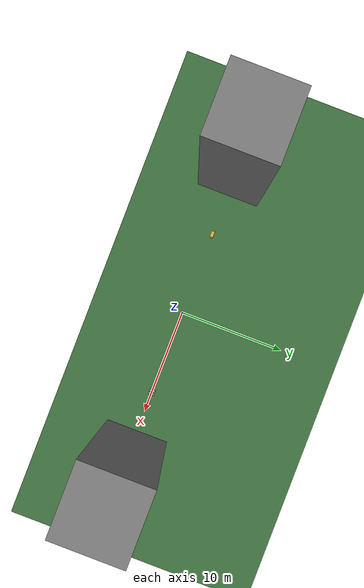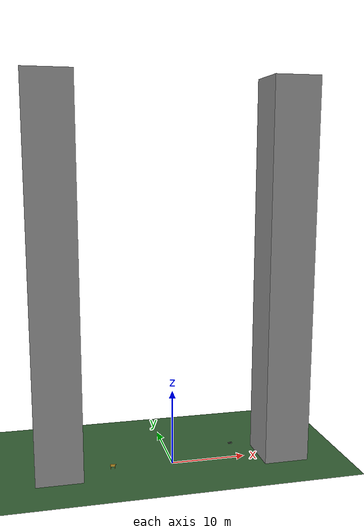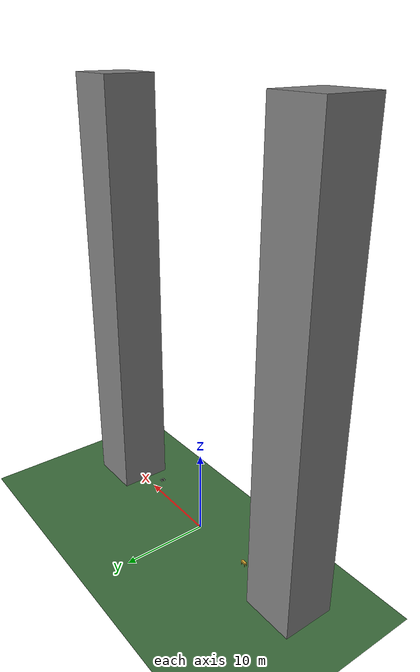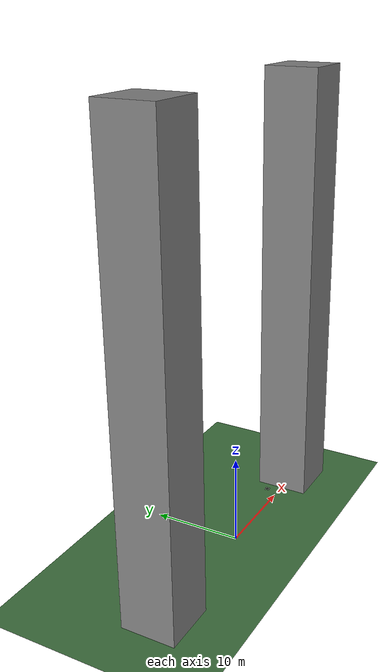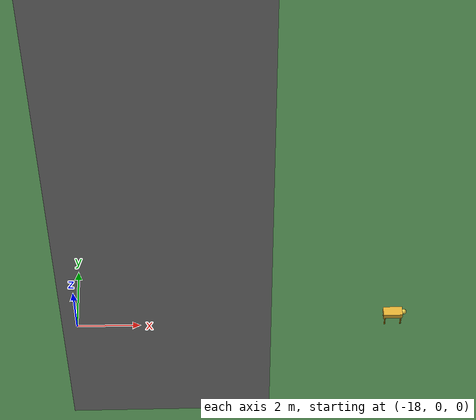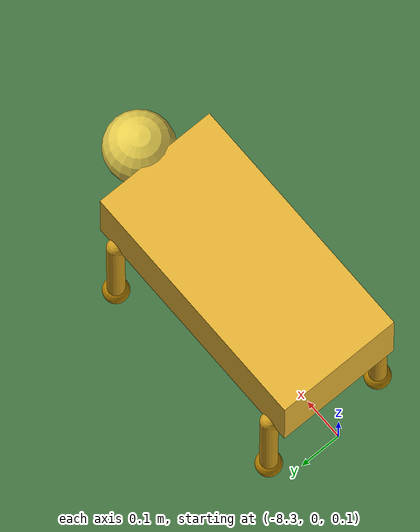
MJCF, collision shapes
<mujoco model="Drone and Go1 Simple Combined">
  <!-- Stadium ground -->
  <include file="../stadium_ground.xml"/>

  <!-- Drone settings -->
  <compiler autolimits="true" meshdir="../skydio_x2/assets" texturedir="../skydio_x2/assets"/>
  <option timestep="0.01" density="1.225" viscosity="1.8e-5"/>

  <statistic center="0 0 1.5" extent="80" meansize=".05"/>

  <visual>
    <headlight diffuse="0.2 0.2 0.2" ambient="0.05 0.05 0.05" specular="0 0 0"/>
    <rgba haze="0 0 0 0"/>
    <global azimuth="-20" elevation="-20"/>
    <map zfar="2000"/>
  </visual>

  <!-- Drone assets -->
  <asset>
    <texture type="skybox" builtin="gradient" rgb1="0.9 0.9 0.92" rgb2="0.7 0.7 0.72" width="512" height="3072"/>
    <texture name="X2_lowpoly_texture_SpinningProps_1024" type="2d" file="../skydio_x2/assets/X2_lowpoly_texture_SpinningProps_1024.png"/>
    <material name="phong3SG" texture="X2_lowpoly_texture_SpinningProps_1024"/>
    <material name="invisible" rgba="0 0 0 0"/>
    <mesh name="X2_lowpoly" file="../skydio_x2/assets/X2_lowpoly.obj" scale="0.01 0.01 0.01"/>
  </asset>

  <!-- Drone defaults -->
  <default>
    <default class="x2">
      <geom mass="0"/>
      <motor ctrlrange="0 13"/>
      <default class="visual">
        <geom group="2" type="mesh" contype="0" conaffinity="0"/>
      </default>
      <default class="collision">
        <geom group="3" type="box"/>
        <default class="rotor">
          <geom type="ellipsoid" size=".13 .13 .01"/>
        </default>
      </default>
      <site group="5"/>
    </default>
  </default>

  <worldbody>
    <light pos="0 0 20" dir="0 0 -1" directional="true"/>

    <!-- Drone positioned on the right side -->
    <body name="x2" pos="8 0 2" childclass="x2">
      <freejoint/>
      <camera name="track" pos="-1 0 .5" xyaxes="0 -1 0 1 0 2" mode="trackcom"/>
      <site name="imu" pos="0 0 .02"/>
      <geom material="phong3SG" mesh="X2_lowpoly" class="visual" quat="0 0 1 1"/>
      <geom class="collision" size=".06 .027 .02" pos=".04 0 .02"/>
      <geom class="collision" size=".06 .027 .02" pos=".04 0 .06"/>
      <geom class="collision" size=".05 .027 .02" pos="-.07 0 .065"/>
      <geom class="collision" size=".023 .017 .01" pos="-.137 .008 .065" quat="1 0 0 1"/>
      <geom name="rotor1" class="rotor" pos="-.14 -.18 .05" mass=".25"/>
      <geom name="rotor2" class="rotor" pos="-.14 .18 .05" mass=".25"/>
      <geom name="rotor3" class="rotor" pos=".14 .18 .08" mass=".25"/>
      <geom name="rotor4" class="rotor" pos=".14 -.18 .08" mass=".25"/>
      <geom size=".16 .04 .02" pos="0 0 0.02" type="ellipsoid" mass=".325" class="visual" material="invisible"/>
      <site name="thrust1" pos="-.14 -.18 .05"/>
      <site name="thrust2" pos="-.14 .18 .05"/>
      <site name="thrust3" pos=".14 .18 .08"/>
      <site name="thrust4" pos=".14 -.18 .08"/>
    </body>

    <!-- Simple Go1-style robot on the left -->
    <body name="simple_go1" pos="-8 0 0.5">
      <freejoint/>
      <!-- Main body -->
      <geom type="box" size="0.3 0.15 0.1" rgba="0.9 0.7 0.2 1"/>

      <!-- Legs - Front Left -->
      <body pos="0.25 0.15 -0.1">
        <geom type="capsule" size="0.02 0.15" pos="0 0 -0.15" rgba="0.8 0.6 0.1 1"/>
        <geom type="sphere" size="0.03" pos="0 0 -0.3" rgba="0.7 0.5 0.0 1"/>
      </body>

      <!-- Legs - Front Right -->
      <body pos="0.25 -0.15 -0.1">
        <geom type="capsule" size="0.02 0.15" pos="0 0 -0.15" rgba="0.8 0.6 0.1 1"/>
        <geom type="sphere" size="0.03" pos="0 0 -0.3" rgba="0.7 0.5 0.0 1"/>
      </body>

      <!-- Legs - Back Left -->
      <body pos="-0.25 0.15 -0.1">
        <geom type="capsule" size="0.02 0.15" pos="0 0 -0.15" rgba="0.8 0.6 0.1 1"/>
        <geom type="sphere" size="0.03" pos="0 0 -0.3" rgba="0.7 0.5 0.0 1"/>
      </body>

      <!-- Legs - Back Right -->
      <body pos="-0.25 -0.15 -0.1">
        <geom type="capsule" size="0.02 0.15" pos="0 0 -0.15" rgba="0.8 0.6 0.1 1"/>
        <geom type="sphere" size="0.03" pos="0 0 -0.3" rgba="0.7 0.5 0.0 1"/>
      </body>

      <!-- Head -->
      <geom type="sphere" size="0.08" pos="0.35 0 0.05" rgba="0.9 0.8 0.3 1"/>
    </body>
  </worldbody>

  <actuator>
    <motor class="x2" name="thrust1" site="thrust1" gear="0 0 1 0 0 -.0201"/>
    <motor class="x2" name="thrust2" site="thrust2" gear="0 0 1 0 0  .0201"/>
    <motor class="x2" name="thrust3" site="thrust3" gear="0 0 1 0 0  .0201"/>
    <motor class="x2" name="thrust4" site="thrust4" gear="0 0 1 0 0 -.0201"/>
  </actuator>

  <sensor>
    <gyro name="body_gyro" site="imu"/>
    <accelerometer name="body_linacc" site="imu"/>
    <framequat name="body_quat" objtype="site" objname="imu"/>
  </sensor>

  <keyframe>
    <key name="hover" qpos="8 0 2.3 1 0 0 0 -8 0 0.2 1 0 0 0" ctrl="3.2495625 3.2495625 3.2495625 3.2495625"/>
  </keyframe>
</mujoco>

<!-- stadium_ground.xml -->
<mujoco model="stadium_ground">
  <asset>
    <texture type="2d" name="ground_tex" builtin="gradient" width="1024" height="1024"
      rgb1="0.3 0.5 0.3" rgb2="0.2 0.4 0.2"/>
    <material name="ground_material" texture="ground_tex" texuniform="true"
      reflectance="0" specular="0" shininess="0"/>
    <material name="tower_material" rgba="0.5 0.5 0.5 1"/>
  </asset>

  <worldbody>
    <geom name="ground" type="plane" size="0 0 1" material="ground_material" friction="1 0.1 0.05"/>
    <geom name="tower1" type="box" size="3 3 25" material="tower_material" pos="15 0 25"/>
    <geom name="tower2" type="box" size="3 3 25" material="tower_material" pos="-15 0 25"/>
  </worldbody>
</mujoco>
